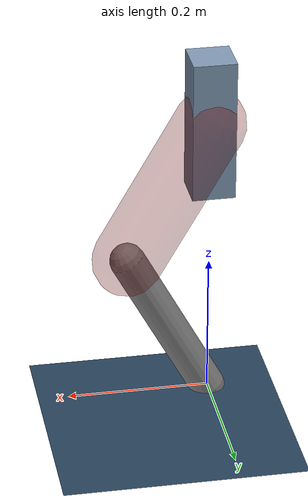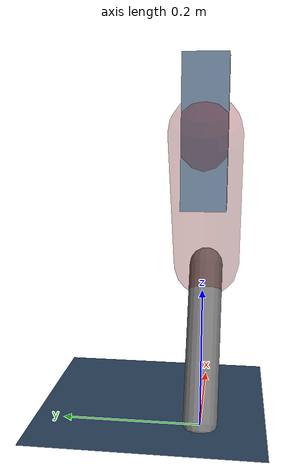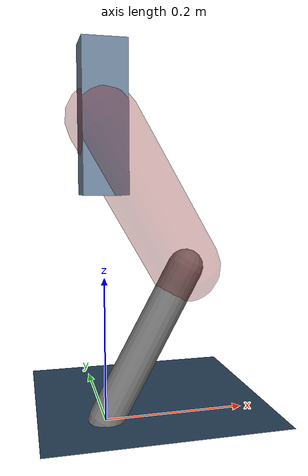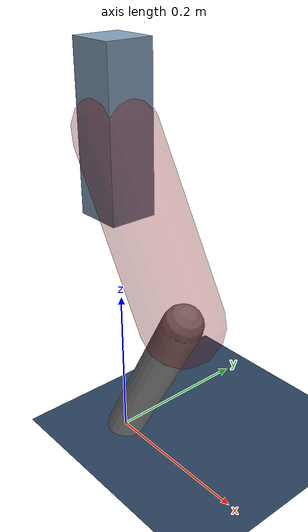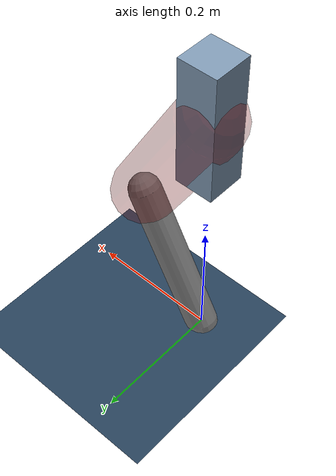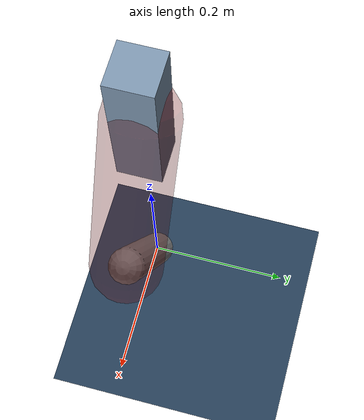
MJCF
<mujoco model="Hopper2D">
	<compiler inertiafromgeom="true" angle="radian" />
	<option timestep="0.001" integrator="implicit" cone="elliptic" solver="Newton" tolerance="1e-10" />

	<default>
		<geom contype="1" conaffinity="1" condim="3" friction="2 0.005 0.0001" solref="0.005 1" />
		<joint limited="true" damping="0.1" />
	</default>

	<asset>
		<texture name="skybox" type="skybox" builtin="gradient" rgb1=".4 .6 .8" rgb2="0 0 0" width="800" height="800" />
		<texture name="grid" type="2d" builtin="checker" rgb1=".1 .2 .3" rgb2=".2 .3 .4" width="300" height="300" mark="edge" markrgb=".2 .3 .4" />
		<material name="ground" texture="grid" texrepeat="1 1" texuniform="true" reflectance="0.1" />
		<material name="leg" rgba="0.5 0.6 0.7 1" />
	</asset>

	<worldbody>

		<geom name="floor" type="plane" size="5 5 0.25" material="ground" />

		<light directional="false" diffuse="0.8 0.8 0.8" specular="0.3 0.3 0.3" pos="0 0 2" dir="0 0 -1" />
		<light mode="targetbodycom" target="base" directional="false" diffuse="0.8 0.8 0.8" specular="0.3 0.3 0.3" pos="0 0 2" dir="0 0 -1" />

		<camera name="fixed" pos="0 -2 1" xyaxes="1 0 0 0 0 1" />
		<camera name="tracking" mode="trackcom" pos="0 -3 1" />

		<body name="root" pos="0 0 0.4133802911700467">
			<joint name="slide_x" type="slide" axis="1 0 0" range="-100 100" />
			<joint name="slide_z" type="slide" axis="0 0 1" range="0 10" />

			<body name="base" pos="0 0 0">
				<geom name="torso" type="box" size="0.03 0.03 0.1" mass="2.133" material="leg" />

				<body name="link1" pos="0 0 0" euler="0 1.0499964964999455 0">
					<joint type="hinge" axis="0 -1 0" pos="0 0 0" name="hinge1" limited="true" range="-3.14 3.14" stiffness="0" damping="0.1" />
					<geom name="thigh" type="capsule" fromto="0 0 0 0.23142561110031734 0 0" size="0.05" rgba="0.5 0 0 0.3" mass="0.8086640277507934" />

					<body name="link2" pos="0.23142561110031734 0 0" euler="0 1.0171249528740378 0">
						<joint type="hinge" axis="0 -1 0" pos="0 0 0" name="hinge2" limited="true" range="-3.14 3.14" stiffness="0" damping="0.1" />
						<geom name="shank" type="capsule" fromto="0 0 0 0.2418144476345642 0 0" size="0.025" mass="0.43575155810765137" />

					</body>
				</body>
			</body>
		</body>
	</worldbody>

	<actuator>
		<motor name="torque1" joint="hinge1" ctrlrange="-46.79795145960097 46.79795145960097" ctrllimited="true" gear="1" />
		<motor name="torque2" joint="hinge2" ctrlrange="-35.59243784147665 35.59243784147665" ctrllimited="true" gear="1" />
	</actuator>
</mujoco>
